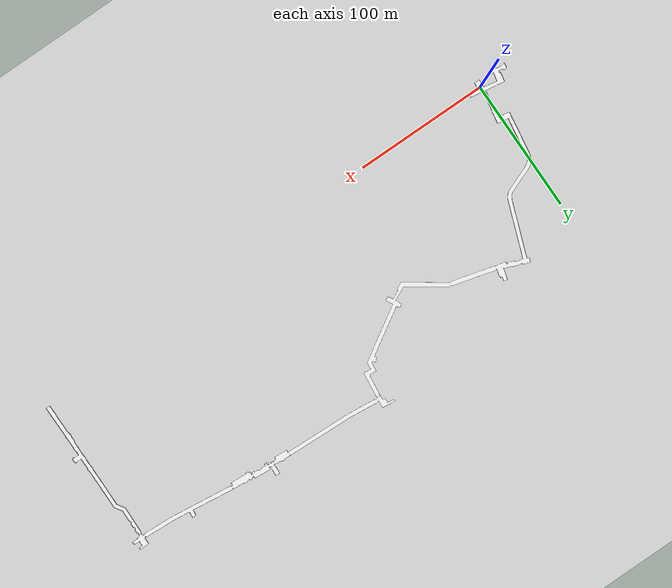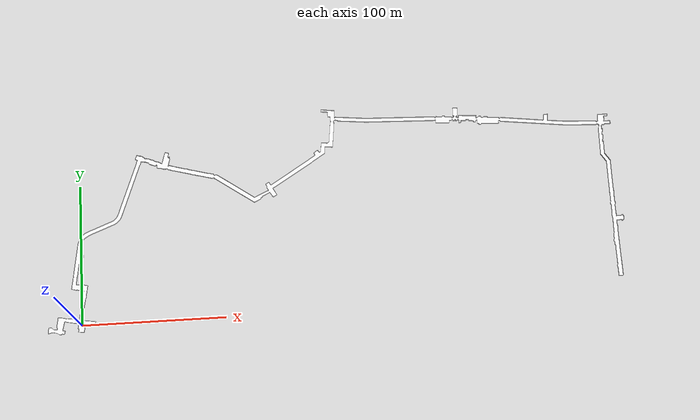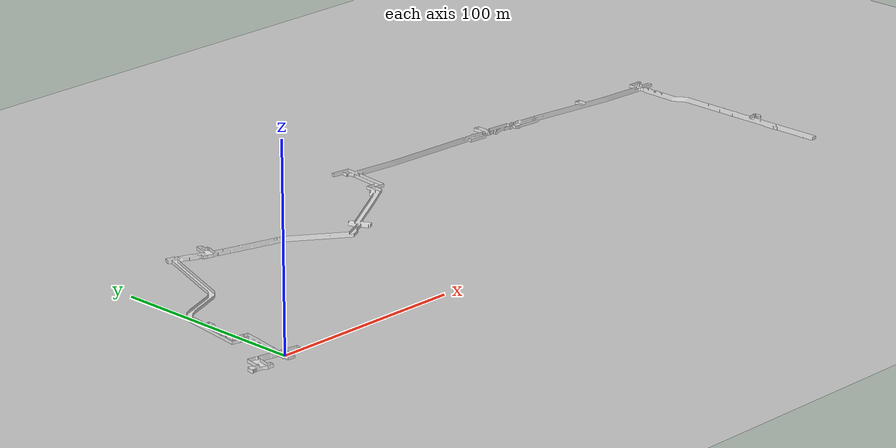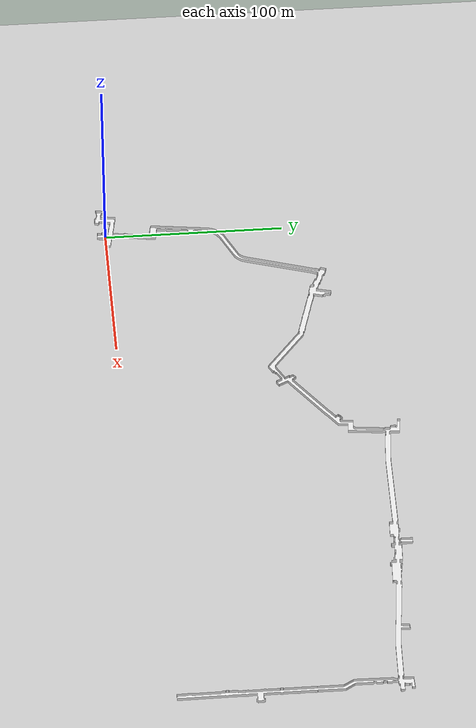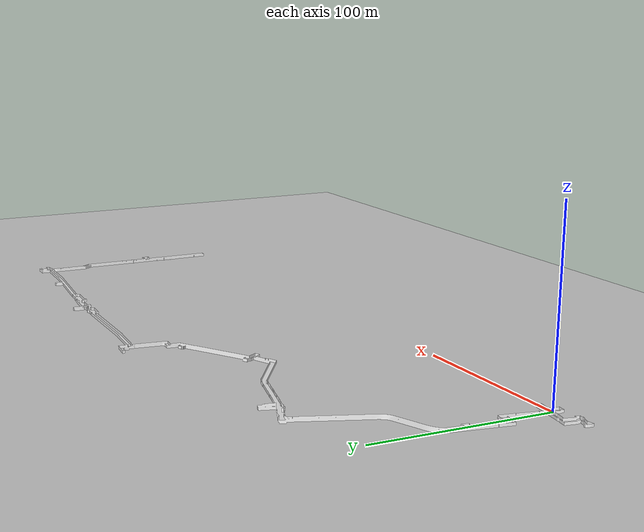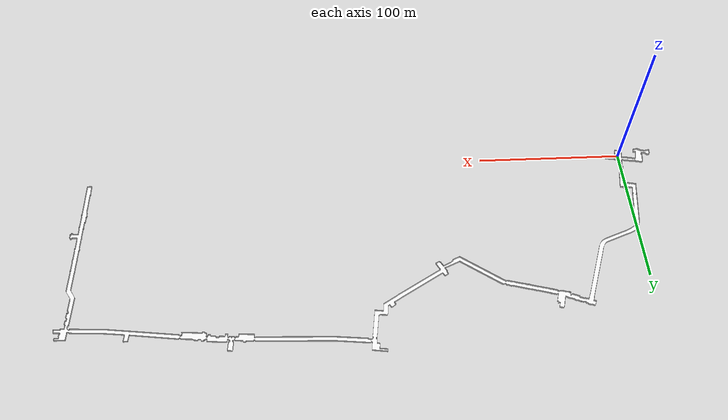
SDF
<sdf version="1.6">
 <world name="default">
  <physics type="ode">
   <gravity>0.000000 0.000000 -9.810000</gravity>
   <ode>
    <solver><type>quick</type><iters>20</iters><sor>1.000000</sor></solver>
    <constraints>
     <cfm>0.000000</cfm>
     <erp>0.200000</erp>
     <contact_max_correcting_vel>100.000000</contact_max_correcting_vel>
     <contact_surface_layer>0.000000</contact_surface_layer>
    </constraints>
   </ode>
   <real_time_update_rate>1000.000000</real_time_update_rate>
   <max_step_size>0.001000</max_step_size>
   <real_time_factor>1.000000</real_time_factor>
   <max_contacts>20</max_contacts>
  </physics>
  <light name="sun" type="directional">
   <pose>0 0 10 0 -0 0</pose>
   <diffuse>0.8 0.8 0.8 1</diffuse>
   <specular>0.2 0.2 0.2 1</specular>
   <attenuation>
    <range>1000</range>
    <constant>0.9</constant>
    <linear>0.01</linear>
    <quadratic>0.001</quadratic>
   </attenuation>
   <direction>-0.5 0.1 -0.9</direction>
  </light>
  <model name="ground_plane">
   <static>1</static>
   <link name="link">
    <visual name="visual">
     <cast_shadows>0</cast_shadows>
     <geometry><plane><normal>0 0 1</normal><size>100 100</size></plane></geometry>
     <material>
      <script><uri>file://media/materials/scripts/gazebo.material</uri><name>Gazebo/Grey</name></script>
     </material>
    </visual>
    <velocity_decay><linear>0</linear><angular>0</angular></velocity_decay>
   </link>
  </model>
  <scene><ambient>0.4 0.4 0.4 1</ambient><background>0.7 0.7 0.7 1</background><shadows>1</shadows></scene>
  <model name="hospital_flat_map">
   <static>1</static>
   <link name="link">
    <collision name="colision">
     <geometry>
      <mesh><uri>model://hospital_flat_map/meshes/hospital_flat_map.stl</uri><scale>1 1 1</scale></mesh>
     </geometry>
     <surface><friction><ode><mu>1000.000000</mu><mu2>1000.000000</mu2></ode></friction></surface>
    </collision>
    <velocity_decay><linear>0.000000</linear><angular>0.000000</angular></velocity_decay>
    <visual name="visual">
     <geometry>
      <mesh><uri>model://hospital_flat_map/meshes/hospital_flat_map.stl</uri><scale>1 1 1</scale></mesh>
     </geometry>
     <material>
      <script><uri>file://media/materials/scripts/gazebo.material</uri><name>Gazebo/White</name></script>
     </material>
    </visual>
   </link>
  </model>
 </world>
</sdf>
